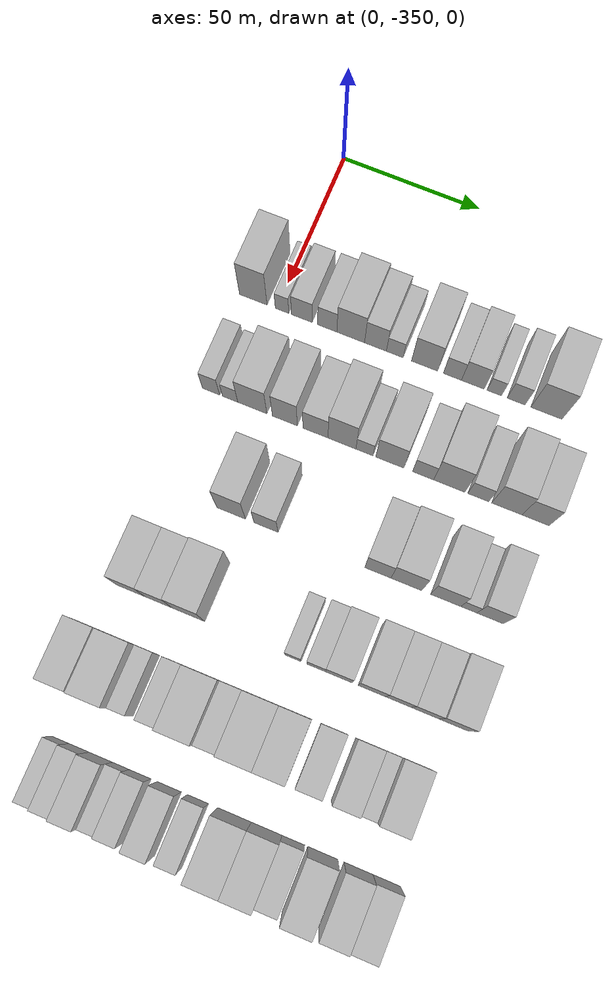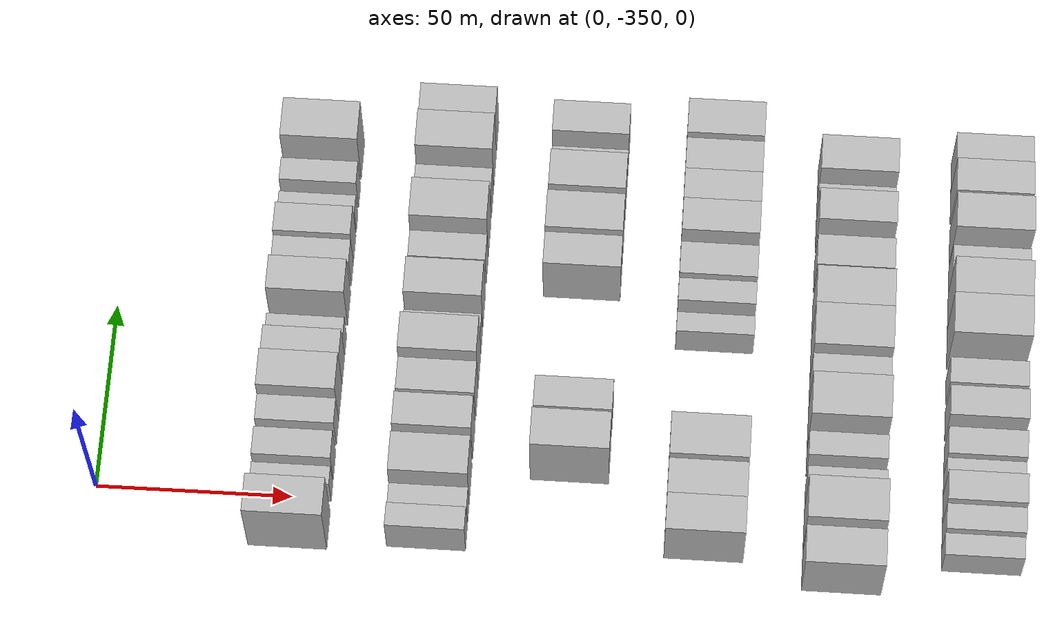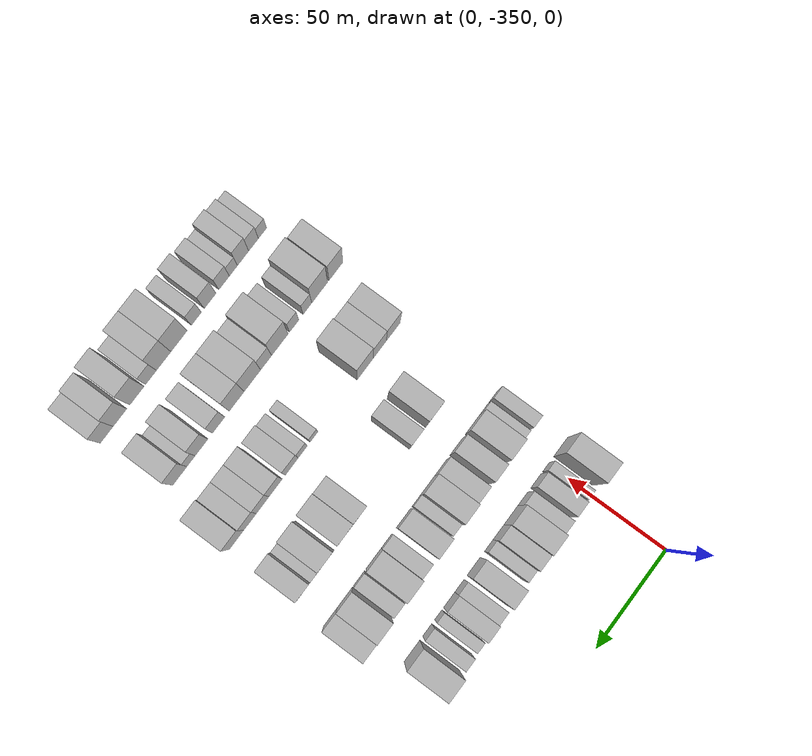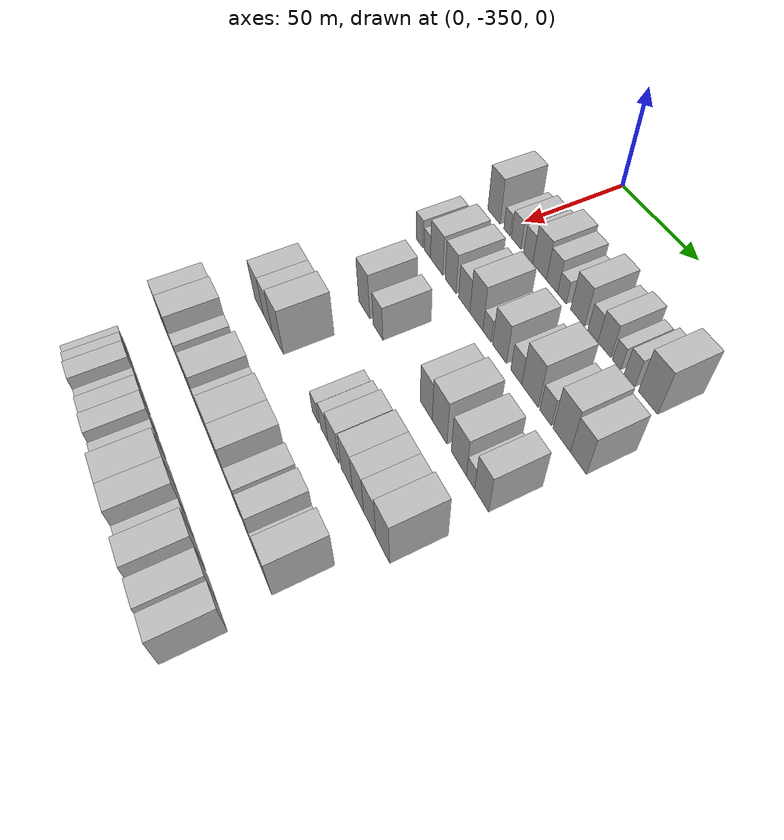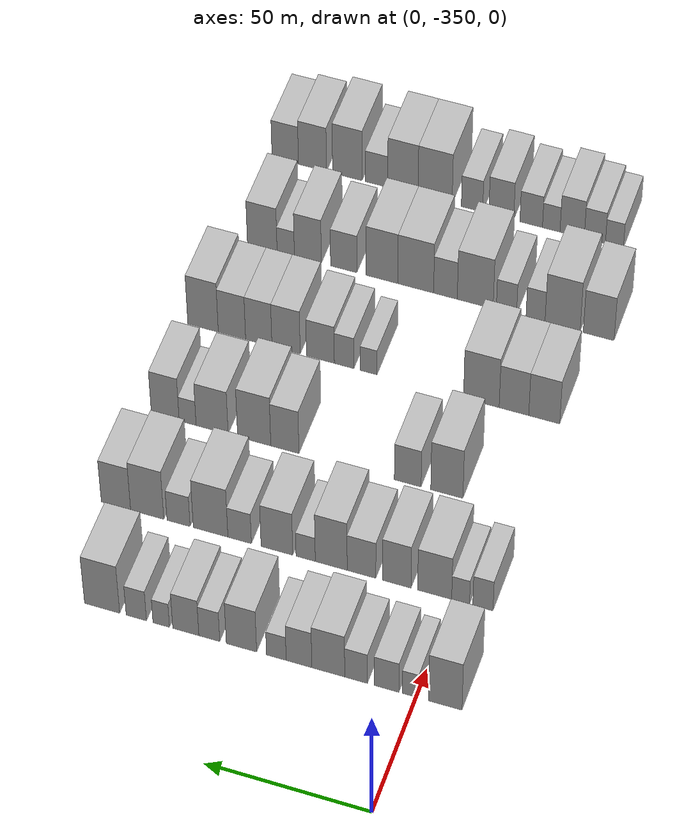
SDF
<sdf version="1.6">
 <world name="default">
  <model name="building_26">
   <static>1</static>
   <pose>50.0000 -358.6228 0 0.000000 0.000000 0.000000</pose>
   <link name="link">
    <pose>0 0 12.00 0 0 0</pose>
    <collision name="collision"><geometry><box><size>20.0000 10.0231 24.0000</size></box></geometry></collision>
    <visual name="visual">
     <cast_shadows>0</cast_shadows>
     <geometry><box><size>20.0000 10.0231 24.0000</size></box></geometry>
     <material>
      <script>
       <uri>model://HANNAS_wall/materials/scripts</uri>
       <uri>model://HANNAS_wall/materials/textures</uri>
       <name>vrc/HANNAS_wall</name>
      </script>
     </material>
    </visual>
   </link>
  </model>
  <model name="building_27">
   <static>1</static>
   <pose>50.0000 -348.1740 0 0.000000 0.000000 0.000000</pose>
   <link name="link">
    <pose>0 0 6.00 0 0 0</pose>
    <collision name="collision"><geometry><box><size>20.0000 4.8745 12.0000</size></box></geometry></collision>
    <visual name="visual">
     <cast_shadows>0</cast_shadows>
     <geometry><box><size>20.0000 4.8745 12.0000</size></box></geometry>
     <material>
      <script>
       <uri>model://HANNAS_wall/materials/scripts</uri>
       <uri>model://HANNAS_wall/materials/textures</uri>
       <name>vrc/HANNAS_wall</name>
      </script>
     </material>
    </visual>
   </link>
  </model>
  <model name="building_28">
   <static>1</static>
   <pose>50.0000 -341.0008 0 0.000000 0.000000 0.000000</pose>
   <link name="link">
    <pose>0 0 7.50 0 0 0</pose>
    <collision name="collision"><geometry><box><size>20.0000 7.4718 15.0000</size></box></geometry></collision>
    <visual name="visual">
     <cast_shadows>0</cast_shadows>
     <geometry><box><size>20.0000 7.4718 15.0000</size></box></geometry>
     <material>
      <script>
       <uri>model://HANNAS_wall/materials/scripts</uri>
       <uri>model://HANNAS_wall/materials/textures</uri>
       <name>vrc/HANNAS_wall</name>
      </script>
     </material>
    </visual>
   </link>
  </model>
  <model name="building_29">
   <static>1</static>
   <pose>50.0000 -331.8281 0 0.000000 0.000000 0.000000</pose>
   <link name="link">
    <pose>0 0 7.50 0 0 0</pose>
    <collision name="collision"><geometry><box><size>20.0000 6.8737 15.0000</size></box></geometry></collision>
    <visual name="visual">
     <cast_shadows>0</cast_shadows>
     <geometry><box><size>20.0000 6.8737 15.0000</size></box></geometry>
     <material>
      <script>
       <uri>model://HANNAS_wall/materials/scripts</uri>
       <uri>model://HANNAS_wall/materials/textures</uri>
       <name>vrc/HANNAS_wall</name>
      </script>
     </material>
    </visual>
   </link>
  </model>
  <model name="building_30">
   <static>1</static>
   <pose>50.0000 -323.4104 0 0.000000 0.000000 0.000000</pose>
   <link name="link">
    <pose>0 0 10.50 0 0 0</pose>
    <collision name="collision"><geometry><box><size>20.0000 9.9616 21.0000</size></box></geometry></collision>
    <visual name="visual">
     <cast_shadows>0</cast_shadows>
     <geometry><box><size>20.0000 9.9616 21.0000</size></box></geometry>
     <material>
      <script>
       <uri>model://HANNAS_wall/materials/scripts</uri>
       <uri>model://HANNAS_wall/materials/textures</uri>
       <name>vrc/HANNAS_wall</name>
      </script>
     </material>
    </visual>
   </link>
  </model>
  <model name="building_31">
   <static>1</static>
   <pose>50.0000 -314.5346 0 0.000000 0.000000 0.000000</pose>
   <link name="link">
    <pose>0 0 9.00 0 0 0</pose>
    <collision name="collision"><geometry><box><size>20.0000 7.7899 18.0000</size></box></geometry></collision>
    <visual name="visual">
     <cast_shadows>0</cast_shadows>
     <geometry><box><size>20.0000 7.7899 18.0000</size></box></geometry>
     <material>
      <script>
       <uri>model://HANNAS_wall/materials/scripts</uri>
       <uri>model://HANNAS_wall/materials/textures</uri>
       <name>vrc/HANNAS_wall</name>
      </script>
     </material>
    </visual>
   </link>
  </model>
  <model name="building_32">
   <static>1</static>
   <pose>50.0000 -307.6552 0 0.000000 0.000000 0.000000</pose>
   <link name="link">
    <pose>0 0 6.00 0 0 0</pose>
    <collision name="collision"><geometry><box><size>20.0000 5.9690 12.0000</size></box></geometry></collision>
    <visual name="visual">
     <cast_shadows>0</cast_shadows>
     <geometry><box><size>20.0000 5.9690 12.0000</size></box></geometry>
     <material>
      <script>
       <uri>model://HANNAS_wall/materials/scripts</uri>
       <uri>model://HANNAS_wall/materials/textures</uri>
       <name>vrc/HANNAS_wall</name>
      </script>
     </material>
    </visual>
   </link>
  </model>
  <model name="building_33">
   <static>1</static>
   <pose>50.0000 -297.0364 0 0.000000 0.000000 0.000000</pose>
   <link name="link">
    <pose>0 0 10.50 0 0 0</pose>
    <collision name="collision"><geometry><box><size>20.0000 9.2685 21.0000</size></box></geometry></collision>
    <visual name="visual">
     <cast_shadows>0</cast_shadows>
     <geometry><box><size>20.0000 9.2685 21.0000</size></box></geometry>
     <material>
      <script>
       <uri>model://HANNAS_wall/materials/scripts</uri>
       <uri>model://HANNAS_wall/materials/textures</uri>
       <name>vrc/HANNAS_wall</name>
      </script>
     </material>
    </visual>
   </link>
  </model>
  <model name="building_34">
   <static>1</static>
   <pose>50.0000 -287.2047 0 0.000000 0.000000 0.000000</pose>
   <link name="link">
    <pose>0 0 7.50 0 0 0</pose>
    <collision name="collision"><geometry><box><size>20.0000 6.3949 15.0000</size></box></geometry></collision>
    <visual name="visual">
     <cast_shadows>0</cast_shadows>
     <geometry><box><size>20.0000 6.3949 15.0000</size></box></geometry>
     <material>
      <script>
       <uri>model://HANNAS_wall/materials/scripts</uri>
       <uri>model://HANNAS_wall/materials/textures</uri>
       <name>vrc/HANNAS_wall</name>
      </script>
     </material>
    </visual>
   </link>
  </model>
  <model name="building_35">
   <static>1</static>
   <pose>50.0000 -280.0026 0 0.000000 0.000000 0.000000</pose>
   <link name="link">
    <pose>0 0 9.00 0 0 0</pose>
    <collision name="collision"><geometry><box><size>20.0000 8.0094 18.0000</size></box></geometry></collision>
    <visual name="visual">
     <cast_shadows>0</cast_shadows>
     <geometry><box><size>20.0000 8.0094 18.0000</size></box></geometry>
     <material>
      <script>
       <uri>model://HANNAS_wall/materials/scripts</uri>
       <uri>model://HANNAS_wall/materials/textures</uri>
       <name>vrc/HANNAS_wall</name>
      </script>
     </material>
    </visual>
   </link>
  </model>
  <model name="building_36">
   <static>1</static>
   <pose>50.0000 -272.4580 0 0.000000 0.000000 0.000000</pose>
   <link name="link">
    <pose>0 0 6.00 0 0 0</pose>
    <collision name="collision"><geometry><box><size>20.0000 5.0798 12.0000</size></box></geometry></collision>
    <visual name="visual">
     <cast_shadows>0</cast_shadows>
     <geometry><box><size>20.0000 5.0798 12.0000</size></box></geometry>
     <material>
      <script>
       <uri>model://HANNAS_wall/materials/scripts</uri>
       <uri>model://HANNAS_wall/materials/textures</uri>
       <name>vrc/HANNAS_wall</name>
      </script>
     </material>
    </visual>
   </link>
  </model>
  <model name="building_37">
   <static>1</static>
   <pose>50.0000 -264.7876 0 0.000000 0.000000 0.000000</pose>
   <link name="link">
    <pose>0 0 7.50 0 0 0</pose>
    <collision name="collision"><geometry><box><size>20.0000 6.2608 15.0000</size></box></geometry></collision>
    <visual name="visual">
     <cast_shadows>0</cast_shadows>
     <geometry><box><size>20.0000 6.2608 15.0000</size></box></geometry>
     <material>
      <script>
       <uri>model://HANNAS_wall/materials/scripts</uri>
       <uri>model://HANNAS_wall/materials/textures</uri>
       <name>vrc/HANNAS_wall</name>
      </script>
     </material>
    </visual>
   </link>
  </model>
  <model name="building_38">
   <static>1</static>
   <pose>50.0000 -254.2339 0 0.000000 0.000000 0.000000</pose>
   <link name="link">
    <pose>0 0 12.00 0 0 0</pose>
    <collision name="collision"><geometry><box><size>20.0000 10.8467 24.0000</size></box></geometry></collision>
    <visual name="visual">
     <cast_shadows>0</cast_shadows>
     <geometry><box><size>20.0000 10.8467 24.0000</size></box></geometry>
     <material>
      <script>
       <uri>model://HANNAS_wall/materials/scripts</uri>
       <uri>model://HANNAS_wall/materials/textures</uri>
       <name>vrc/HANNAS_wall</name>
      </script>
     </material>
    </visual>
   </link>
  </model>
  <model name="building_160">
   <static>1</static>
   <pose>85.0000 -358.7815 0 0.000000 0.000000 0.000000</pose>
   <link name="link">
    <pose>0 0 7.50 0 0 0</pose>
    <collision name="collision"><geometry><box><size>20.0000 6.1439 15.0000</size></box></geometry></collision>
    <visual name="visual">
     <cast_shadows>0</cast_shadows>
     <geometry><box><size>20.0000 6.1439 15.0000</size></box></geometry>
     <material>
      <script>
       <uri>model://HANNAS_wall/materials/scripts</uri>
       <uri>model://HANNAS_wall/materials/textures</uri>
       <name>vrc/HANNAS_wall</name>
      </script>
     </material>
    </visual>
   </link>
  </model>
  <model name="building_161">
   <static>1</static>
   <pose>85.0000 -351.9942 0 0.000000 0.000000 0.000000</pose>
   <link name="link">
    <pose>0 0 6.00 0 0 0</pose>
    <collision name="collision"><geometry><box><size>20.0000 5.4308 12.0000</size></box></geometry></collision>
    <visual name="visual">
     <cast_shadows>0</cast_shadows>
     <geometry><box><size>20.0000 5.4308 12.0000</size></box></geometry>
     <material>
      <script>
       <uri>model://HANNAS_wall/materials/scripts</uri>
       <uri>model://HANNAS_wall/materials/textures</uri>
       <name>vrc/HANNAS_wall</name>
      </script>
     </material>
    </visual>
   </link>
  </model>
  <model name="building_162">
   <static>1</static>
   <pose>85.0000 -344.0885 0 0.000000 0.000000 0.000000</pose>
   <link name="link">
    <pose>0 0 10.50 0 0 0</pose>
    <collision name="collision"><geometry><box><size>20.0000 10.3806 21.0000</size></box></geometry></collision>
    <visual name="visual">
     <cast_shadows>0</cast_shadows>
     <geometry><box><size>20.0000 10.3806 21.0000</size></box></geometry>
     <material>
      <script>
       <uri>model://HANNAS_wall/materials/scripts</uri>
       <uri>model://HANNAS_wall/materials/textures</uri>
       <name>vrc/HANNAS_wall</name>
      </script>
     </material>
    </visual>
   </link>
  </model>
  <model name="building_163">
   <static>1</static>
   <pose>85.0000 -332.4969 0 0.000000 0.000000 0.000000</pose>
   <link name="link">
    <pose>0 0 10.50 0 0 0</pose>
    <collision name="collision"><geometry><box><size>20.0000 8.8026 21.0000</size></box></geometry></collision>
    <visual name="visual">
     <cast_shadows>0</cast_shadows>
     <geometry><box><size>20.0000 8.8026 21.0000</size></box></geometry>
     <material>
      <script>
       <uri>model://HANNAS_wall/materials/scripts</uri>
       <uri>model://HANNAS_wall/materials/textures</uri>
       <name>vrc/HANNAS_wall</name>
      </script>
     </material>
    </visual>
   </link>
  </model>
  <model name="building_164">
   <static>1</static>
   <pose>85.0000 -321.6985 0 0.000000 0.000000 0.000000</pose>
   <link name="link">
    <pose>0 0 9.00 0 0 0</pose>
    <collision name="collision"><geometry><box><size>20.0000 8.7943 18.0000</size></box></geometry></collision>
    <visual name="visual">
     <cast_shadows>0</cast_shadows>
     <geometry><box><size>20.0000 8.7943 18.0000</size></box></geometry>
     <material>
      <script>
       <uri>model://HANNAS_wall/materials/scripts</uri>
       <uri>model://HANNAS_wall/materials/textures</uri>
       <name>vrc/HANNAS_wall</name>
      </script>
     </material>
    </visual>
   </link>
  </model>
  <model name="building_165">
   <static>1</static>
   <pose>85.0000 -312.3862 0 0.000000 0.000000 0.000000</pose>
   <link name="link">
    <pose>0 0 12.00 0 0 0</pose>
    <collision name="collision"><geometry><box><size>20.0000 9.8302 24.0000</size></box></geometry></collision>
    <visual name="visual">
     <cast_shadows>0</cast_shadows>
     <geometry><box><size>20.0000 9.8302 24.0000</size></box></geometry>
     <material>
      <script>
       <uri>model://HANNAS_wall/materials/scripts</uri>
       <uri>model://HANNAS_wall/materials/textures</uri>
       <name>vrc/HANNAS_wall</name>
      </script>
     </material>
    </visual>
   </link>
  </model>
  <model name="building_166">
   <static>1</static>
   <pose>85.0000 -304.4908 0 0.000000 0.000000 0.000000</pose>
   <link name="link">
    <pose>0 0 6.00 0 0 0</pose>
    <collision name="collision"><geometry><box><size>20.0000 5.9608 12.0000</size></box></geometry></collision>
    <visual name="visual">
     <cast_shadows>0</cast_shadows>
     <geometry><box><size>20.0000 5.9608 12.0000</size></box></geometry>
     <material>
      <script>
       <uri>model://HANNAS_wall/materials/scripts</uri>
       <uri>model://HANNAS_wall/materials/textures</uri>
       <name>vrc/HANNAS_wall</name>
      </script>
     </material>
    </visual>
   </link>
  </model>
  <model name="building_167">
   <static>1</static>
   <pose>85.0000 -295.6017 0 0.000000 0.000000 0.000000</pose>
   <link name="link">
    <pose>0 0 10.50 0 0 0</pose>
    <collision name="collision"><geometry><box><size>20.0000 9.8174 21.0000</size></box></geometry></collision>
    <visual name="visual">
     <cast_shadows>0</cast_shadows>
     <geometry><box><size>20.0000 9.8174 21.0000</size></box></geometry>
     <material>
      <script>
       <uri>model://HANNAS_wall/materials/scripts</uri>
       <uri>model://HANNAS_wall/materials/textures</uri>
       <name>vrc/HANNAS_wall</name>
      </script>
     </material>
    </visual>
   </link>
  </model>
  <model name="building_168">
   <static>1</static>
   <pose>85.0000 -284.0375 0 0.000000 0.000000 0.000000</pose>
   <link name="link">
    <pose>0 0 7.50 0 0 0</pose>
    <collision name="collision"><geometry><box><size>20.0000 7.3109 15.0000</size></box></geometry></collision>
    <visual name="visual">
     <cast_shadows>0</cast_shadows>
     <geometry><box><size>20.0000 7.3109 15.0000</size></box></geometry>
     <material>
      <script>
       <uri>model://HANNAS_wall/materials/scripts</uri>
       <uri>model://HANNAS_wall/materials/textures</uri>
       <name>vrc/HANNAS_wall</name>
      </script>
     </material>
    </visual>
   </link>
  </model>
  <model name="building_169">
   <static>1</static>
   <pose>85.0000 -274.9933 0 0.000000 0.000000 0.000000</pose>
   <link name="link">
    <pose>0 0 12.00 0 0 0</pose>
    <collision name="collision"><geometry><box><size>20.0000 10.7776 24.0000</size></box></geometry></collision>
    <visual name="visual">
     <cast_shadows>0</cast_shadows>
     <geometry><box><size>20.0000 10.7776 24.0000</size></box></geometry>
     <material>
      <script>
       <uri>model://HANNAS_wall/materials/scripts</uri>
       <uri>model://HANNAS_wall/materials/textures</uri>
       <name>vrc/HANNAS_wall</name>
      </script>
     </material>
    </visual>
   </link>
  </model>
  <model name="building_170">
   <static>1</static>
   <pose>85.0000 -264.9934 0 0.000000 0.000000 0.000000</pose>
   <link name="link">
    <pose>0 0 7.50 0 0 0</pose>
    <collision name="collision"><geometry><box><size>20.0000 7.2221 15.0000</size></box></geometry></collision>
    <visual name="visual">
     <cast_shadows>0</cast_shadows>
     <geometry><box><size>20.0000 7.2221 15.0000</size></box></geometry>
     <material>
      <script>
       <uri>model://HANNAS_wall/materials/scripts</uri>
       <uri>model://HANNAS_wall/materials/textures</uri>
       <name>vrc/HANNAS_wall</name>
      </script>
     </material>
    </visual>
   </link>
  </model>
  <model name="building_171">
   <static>1</static>
   <pose>85.0000 -255.1791 0 0.000000 0.000000 0.000000</pose>
   <link name="link">
    <pose>0 0 12.00 0 0 0</pose>
    <collision name="collision"><geometry><box><size>20.0000 10.4065 24.0000</size></box></geometry></collision>
    <visual name="visual">
     <cast_shadows>0</cast_shadows>
     <geometry><box><size>20.0000 10.4065 24.0000</size></box></geometry>
     <material>
      <script>
       <uri>model://HANNAS_wall/materials/scripts</uri>
       <uri>model://HANNAS_wall/materials/textures</uri>
       <name>vrc/HANNAS_wall</name>
      </script>
     </material>
    </visual>
   </link>
  </model>
  <model name="building_172">
   <static>1</static>
   <pose>85.0000 -245.3760 0 0.000000 0.000000 0.000000</pose>
   <link name="link">
    <pose>0 0 10.50 0 0 0</pose>
    <collision name="collision"><geometry><box><size>20.0000 9.1997 21.0000</size></box></geometry></collision>
    <visual name="visual">
     <cast_shadows>0</cast_shadows>
     <geometry><box><size>20.0000 9.1997 21.0000</size></box></geometry>
     <material>
      <script>
       <uri>model://HANNAS_wall/materials/scripts</uri>
       <uri>model://HANNAS_wall/materials/textures</uri>
       <name>vrc/HANNAS_wall</name>
      </script>
     </material>
    </visual>
   </link>
  </model>
  <model name="building_278">
   <static>1</static>
   <pose>120.0000 -336.5082 0 0.000000 0.000000 0.000000</pose>
   <link name="link">
    <pose>0 0 12.00 0 0 0</pose>
    <collision name="collision"><geometry><box><size>20.0000 9.9854 24.0000</size></box></geometry></collision>
    <visual name="visual">
     <cast_shadows>0</cast_shadows>
     <geometry><box><size>20.0000 9.9854 24.0000</size></box></geometry>
     <material>
      <script>
       <uri>model://HANNAS_wall/materials/scripts</uri>
       <uri>model://HANNAS_wall/materials/textures</uri>
       <name>vrc/HANNAS_wall</name>
      </script>
     </material>
    </visual>
   </link>
  </model>
  <model name="building_279">
   <static>1</static>
   <pose>120.0000 -324.3525 0 0.000000 0.000000 0.000000</pose>
   <link name="link">
    <pose>0 0 9.00 0 0 0</pose>
    <collision name="collision"><geometry><box><size>20.0000 8.3260 18.0000</size></box></geometry></collision>
    <visual name="visual">
     <cast_shadows>0</cast_shadows>
     <geometry><box><size>20.0000 8.3260 18.0000</size></box></geometry>
     <material>
      <script>
       <uri>model://HANNAS_wall/materials/scripts</uri>
       <uri>model://HANNAS_wall/materials/textures</uri>
       <name>vrc/HANNAS_wall</name>
      </script>
     </material>
    </visual>
   </link>
  </model>
  <model name="building_280">
   <static>1</static>
   <pose>120.0000 -285.8775 0 0.000000 0.000000 0.000000</pose>
   <link name="link">
    <pose>0 0 10.50 0 0 0</pose>
    <collision name="collision"><geometry><box><size>20.0000 8.8746 21.0000</size></box></geometry></collision>
    <visual name="visual">
     <cast_shadows>0</cast_shadows>
     <geometry><box><size>20.0000 8.8746 21.0000</size></box></geometry>
     <material>
      <script>
       <uri>model://HANNAS_wall/materials/scripts</uri>
       <uri>model://HANNAS_wall/materials/textures</uri>
       <name>vrc/HANNAS_wall</name>
      </script>
     </material>
    </visual>
   </link>
  </model>
  <model name="building_281">
   <static>1</static>
   <pose>120.0000 -276.2010 0 0.000000 0.000000 0.000000</pose>
   <link name="link">
    <pose>0 0 12.00 0 0 0</pose>
    <collision name="collision"><geometry><box><size>20.0000 10.4784 24.0000</size></box></geometry></collision>
    <visual name="visual">
     <cast_shadows>0</cast_shadows>
     <geometry><box><size>20.0000 10.4784 24.0000</size></box></geometry>
     <material>
      <script>
       <uri>model://HANNAS_wall/materials/scripts</uri>
       <uri>model://HANNAS_wall/materials/textures</uri>
       <name>vrc/HANNAS_wall</name>
      </script>
     </material>
    </visual>
   </link>
  </model>
  <model name="building_282">
   <static>1</static>
   <pose>120.0000 -262.8775 0 0.000000 0.000000 0.000000</pose>
   <link name="link">
    <pose>0 0 10.50 0 0 0</pose>
    <collision name="collision"><geometry><box><size>20.0000 10.1687 21.0000</size></box></geometry></collision>
    <visual name="visual">
     <cast_shadows>0</cast_shadows>
     <geometry><box><size>20.0000 10.1687 21.0000</size></box></geometry>
     <material>
      <script>
       <uri>model://HANNAS_wall/materials/scripts</uri>
       <uri>model://HANNAS_wall/materials/textures</uri>
       <name>vrc/HANNAS_wall</name>
      </script>
     </material>
    </visual>
   </link>
  </model>
  <model name="building_283">
   <static>1</static>
   <pose>120.0000 -255.1028 0 0.000000 0.000000 0.000000</pose>
   <link name="link">
    <pose>0 0 6.00 0 0 0</pose>
    <collision name="collision"><geometry><box><size>20.0000 5.3806 12.0000</size></box></geometry></collision>
    <visual name="visual">
     <cast_shadows>0</cast_shadows>
     <geometry><box><size>20.0000 5.3806 12.0000</size></box></geometry>
     <material>
      <script>
       <uri>model://HANNAS_wall/materials/scripts</uri>
       <uri>model://HANNAS_wall/materials/textures</uri>
       <name>vrc/HANNAS_wall</name>
      </script>
     </material>
    </visual>
   </link>
  </model>
  <model name="building_284">
   <static>1</static>
   <pose>120.0000 -247.9826 0 0.000000 0.000000 0.000000</pose>
   <link name="link">
    <pose>0 0 10.50 0 0 0</pose>
    <collision name="collision"><geometry><box><size>20.0000 8.8597 21.0000</size></box></geometry></collision>
    <visual name="visual">
     <cast_shadows>0</cast_shadows>
     <geometry><box><size>20.0000 8.8597 21.0000</size></box></geometry>
     <material>
      <script>
       <uri>model://HANNAS_wall/materials/scripts</uri>
       <uri>model://HANNAS_wall/materials/textures</uri>
       <name>vrc/HANNAS_wall</name>
      </script>
     </material>
    </visual>
   </link>
  </model>
  <model name="building_393">
   <static>1</static>
   <pose>155.0000 -355.8081 0 0.000000 0.000000 0.000000</pose>
   <link name="link">
    <pose>0 0 10.50 0 0 0</pose>
    <collision name="collision"><geometry><box><size>20.0000 9.7034 21.0000</size></box></geometry></collision>
    <visual name="visual">
     <cast_shadows>0</cast_shadows>
     <geometry><box><size>20.0000 9.7034 21.0000</size></box></geometry>
     <material>
      <script>
       <uri>model://HANNAS_wall/materials/scripts</uri>
       <uri>model://HANNAS_wall/materials/textures</uri>
       <name>vrc/HANNAS_wall</name>
      </script>
     </material>
    </visual>
   </link>
  </model>
  <model name="building_394">
   <static>1</static>
   <pose>155.0000 -346.3168 0 0.000000 0.000000 0.000000</pose>
   <link name="link">
    <pose>0 0 10.50 0 0 0</pose>
    <collision name="collision"><geometry><box><size>20.0000 9.2791 21.0000</size></box></geometry></collision>
    <visual name="visual">
     <cast_shadows>0</cast_shadows>
     <geometry><box><size>20.0000 9.2791 21.0000</size></box></geometry>
     <material>
      <script>
       <uri>model://HANNAS_wall/materials/scripts</uri>
       <uri>model://HANNAS_wall/materials/textures</uri>
       <name>vrc/HANNAS_wall</name>
      </script>
     </material>
    </visual>
   </link>
  </model>
  <model name="building_395">
   <static>1</static>
   <pose>155.0000 -336.0774 0 0.000000 0.000000 0.000000</pose>
   <link name="link">
    <pose>0 0 12.00 0 0 0</pose>
    <collision name="collision"><geometry><box><size>20.0000 11.1998 24.0000</size></box></geometry></collision>
    <visual name="visual">
     <cast_shadows>0</cast_shadows>
     <geometry><box><size>20.0000 11.1998 24.0000</size></box></geometry>
     <material>
      <script>
       <uri>model://HANNAS_wall/materials/scripts</uri>
       <uri>model://HANNAS_wall/materials/textures</uri>
       <name>vrc/HANNAS_wall</name>
      </script>
     </material>
    </visual>
   </link>
  </model>
  <model name="building_396">
   <static>1</static>
   <pose>155.0000 -300.4393 0 0.000000 0.000000 0.000000</pose>
   <link name="link">
    <pose>0 0 6.00 0 0 0</pose>
    <collision name="collision"><geometry><box><size>20.0000 5.3587 12.0000</size></box></geometry></collision>
    <visual name="visual">
     <cast_shadows>0</cast_shadows>
     <geometry><box><size>20.0000 5.3587 12.0000</size></box></geometry>
     <material>
      <script>
       <uri>model://HANNAS_wall/materials/scripts</uri>
       <uri>model://HANNAS_wall/materials/textures</uri>
       <name>vrc/HANNAS_wall</name>
      </script>
     </material>
    </visual>
   </link>
  </model>
  <model name="building_397">
   <static>1</static>
   <pose>155.0000 -292.6345 0 0.000000 0.000000 0.000000</pose>
   <link name="link">
    <pose>0 0 7.50 0 0 0</pose>
    <collision name="collision"><geometry><box><size>20.0000 6.2510 15.0000</size></box></geometry></collision>
    <visual name="visual">
     <cast_shadows>0</cast_shadows>
     <geometry><box><size>20.0000 6.2510 15.0000</size></box></geometry>
     <material>
      <script>
       <uri>model://HANNAS_wall/materials/scripts</uri>
       <uri>model://HANNAS_wall/materials/textures</uri>
       <name>vrc/HANNAS_wall</name>
      </script>
     </material>
    </visual>
   </link>
  </model>
  <model name="building_398">
   <static>1</static>
   <pose>155.0000 -285.0578 0 0.000000 0.000000 0.000000</pose>
   <link name="link">
    <pose>0 0 9.00 0 0 0</pose>
    <collision name="collision"><geometry><box><size>20.0000 8.9024 18.0000</size></box></geometry></collision>
    <visual name="visual">
     <cast_shadows>0</cast_shadows>
     <geometry><box><size>20.0000 8.9024 18.0000</size></box></geometry>
     <material>
      <script>
       <uri>model://HANNAS_wall/materials/scripts</uri>
       <uri>model://HANNAS_wall/materials/textures</uri>
       <name>vrc/HANNAS_wall</name>
      </script>
     </material>
    </visual>
   </link>
  </model>
  <model name="building_399">
   <static>1</static>
   <pose>155.0000 -274.0758 0 0.000000 0.000000 0.000000</pose>
   <link name="link">
    <pose>0 0 10.50 0 0 0</pose>
    <collision name="collision"><geometry><box><size>20.0000 9.0616 21.0000</size></box></geometry></collision>
    <visual name="visual">
     <cast_shadows>0</cast_shadows>
     <geometry><box><size>20.0000 9.0616 21.0000</size></box></geometry>
     <material>
      <script>
       <uri>model://HANNAS_wall/materials/scripts</uri>
       <uri>model://HANNAS_wall/materials/textures</uri>
       <name>vrc/HANNAS_wall</name>
      </script>
     </material>
    </visual>
   </link>
  </model>
  <model name="building_400">
   <static>1</static>
   <pose>155.0000 -265.3163 0 0.000000 0.000000 0.000000</pose>
   <link name="link">
    <pose>0 0 10.50 0 0 0</pose>
    <collision name="collision"><geometry><box><size>20.0000 8.4575 21.0000</size></box></geometry></collision>
    <visual name="visual">
     <cast_shadows>0</cast_shadows>
     <geometry><box><size>20.0000 8.4575 21.0000</size></box></geometry>
     <material>
      <script>
       <uri>model://HANNAS_wall/materials/scripts</uri>
       <uri>model://HANNAS_wall/materials/textures</uri>
       <name>vrc/HANNAS_wall</name>
      </script>
     </material>
    </visual>
   </link>
  </model>
  <model name="building_401">
   <static>1</static>
   <pose>155.0000 -256.6833 0 0.000000 0.000000 0.000000</pose>
   <link name="link">
    <pose>0 0 10.50 0 0 0</pose>
    <collision name="collision"><geometry><box><size>20.0000 8.8085 21.0000</size></box></geometry></collision>
    <visual name="visual">
     <cast_shadows>0</cast_shadows>
     <geometry><box><size>20.0000 8.8085 21.0000</size></box></geometry>
     <material>
      <script>
       <uri>model://HANNAS_wall/materials/scripts</uri>
       <uri>model://HANNAS_wall/materials/textures</uri>
       <name>vrc/HANNAS_wall</name>
      </script>
     </material>
    </visual>
   </link>
  </model>
  <model name="building_402">
   <static>1</static>
   <pose>155.0000 -247.3656 0 0.000000 0.000000 0.000000</pose>
   <link name="link">
    <pose>0 0 12.00 0 0 0</pose>
    <collision name="collision"><geometry><box><size>20.0000 9.8269 24.0000</size></box></geometry></collision>
    <visual name="visual">
     <cast_shadows>0</cast_shadows>
     <geometry><box><size>20.0000 9.8269 24.0000</size></box></geometry>
     <material>
      <script>
       <uri>model://HANNAS_wall/materials/scripts</uri>
       <uri>model://HANNAS_wall/materials/textures</uri>
       <name>vrc/HANNAS_wall</name>
      </script>
     </material>
    </visual>
   </link>
  </model>
  <model name="building_513">
   <static>1</static>
   <pose>190.0000 -362.3161 0 0.000000 0.000000 0.000000</pose>
   <link name="link">
    <pose>0 0 10.50 0 0 0</pose>
    <collision name="collision"><geometry><box><size>20.0000 9.7552 21.0000</size></box></geometry></collision>
    <visual name="visual">
     <cast_shadows>0</cast_shadows>
     <geometry><box><size>20.0000 9.7552 21.0000</size></box></geometry>
     <material>
      <script>
       <uri>model://HANNAS_wall/materials/scripts</uri>
       <uri>model://HANNAS_wall/materials/textures</uri>
       <name>vrc/HANNAS_wall</name>
      </script>
     </material>
    </visual>
   </link>
  </model>
  <model name="building_514">
   <static>1</static>
   <pose>190.0000 -350.8643 0 0.000000 0.000000 0.000000</pose>
   <link name="link">
    <pose>0 0 12.00 0 0 0</pose>
    <collision name="collision"><geometry><box><size>20.0000 11.1485 24.0000</size></box></geometry></collision>
    <visual name="visual">
     <cast_shadows>0</cast_shadows>
     <geometry><box><size>20.0000 11.1485 24.0000</size></box></geometry>
     <material>
      <script>
       <uri>model://HANNAS_wall/materials/scripts</uri>
       <uri>model://HANNAS_wall/materials/textures</uri>
       <name>vrc/HANNAS_wall</name>
      </script>
     </material>
    </visual>
   </link>
  </model>
  <model name="building_515">
   <static>1</static>
   <pose>190.0000 -342.2623 0 0.000000 0.000000 0.000000</pose>
   <link name="link">
    <pose>0 0 7.50 0 0 0</pose>
    <collision name="collision"><geometry><box><size>20.0000 6.0555 15.0000</size></box></geometry></collision>
    <visual name="visual">
     <cast_shadows>0</cast_shadows>
     <geometry><box><size>20.0000 6.0555 15.0000</size></box></geometry>
     <material>
      <script>
       <uri>model://HANNAS_wall/materials/scripts</uri>
       <uri>model://HANNAS_wall/materials/textures</uri>
       <name>vrc/HANNAS_wall</name>
      </script>
     </material>
    </visual>
   </link>
  </model>
  <model name="building_516">
   <static>1</static>
   <pose>190.0000 -332.9907 0 0.000000 0.000000 0.000000</pose>
   <link name="link">
    <pose>0 0 7.50 0 0 0</pose>
    <collision name="collision"><geometry><box><size>20.0000 6.4878 15.0000</size></box></geometry></collision>
    <visual name="visual">
     <cast_shadows>0</cast_shadows>
     <geometry><box><size>20.0000 6.4878 15.0000</size></box></geometry>
     <material>
      <script>
       <uri>model://HANNAS_wall/materials/scripts</uri>
       <uri>model://HANNAS_wall/materials/textures</uri>
       <name>vrc/HANNAS_wall</name>
      </script>
     </material>
    </visual>
   </link>
  </model>
  <model name="building_517">
   <static>1</static>
   <pose>190.0000 -323.0016 0 0.000000 0.000000 0.000000</pose>
   <link name="link">
    <pose>0 0 12.00 0 0 0</pose>
    <collision name="collision"><geometry><box><size>20.0000 11.4904 24.0000</size></box></geometry></collision>
    <visual name="visual">
     <cast_shadows>0</cast_shadows>
     <geometry><box><size>20.0000 11.4904 24.0000</size></box></geometry>
     <material>
      <script>
       <uri>model://HANNAS_wall/materials/scripts</uri>
       <uri>model://HANNAS_wall/materials/textures</uri>
       <name>vrc/HANNAS_wall</name>
      </script>
     </material>
    </visual>
   </link>
  </model>
  <model name="building_518">
   <static>1</static>
   <pose>190.0000 -313.4653 0 0.000000 0.000000 0.000000</pose>
   <link name="link">
    <pose>0 0 9.00 0 0 0</pose>
    <collision name="collision"><geometry><box><size>20.0000 7.5821 18.0000</size></box></geometry></collision>
    <visual name="visual">
     <cast_shadows>0</cast_shadows>
     <geometry><box><size>20.0000 7.5821 18.0000</size></box></geometry>
     <material>
      <script>
       <uri>model://HANNAS_wall/materials/scripts</uri>
       <uri>model://HANNAS_wall/materials/textures</uri>
       <name>vrc/HANNAS_wall</name>
      </script>
     </material>
    </visual>
   </link>
  </model>
  <model name="building_519">
   <static>1</static>
   <pose>190.0000 -303.9105 0 0.000000 0.000000 0.000000</pose>
   <link name="link">
    <pose>0 0 12.00 0 0 0</pose>
    <collision name="collision"><geometry><box><size>20.0000 11.5274 24.0000</size></box></geometry></collision>
    <visual name="visual">
     <cast_shadows>0</cast_shadows>
     <geometry><box><size>20.0000 11.5274 24.0000</size></box></geometry>
     <material>
      <script>
       <uri>model://HANNAS_wall/materials/scripts</uri>
       <uri>model://HANNAS_wall/materials/textures</uri>
       <name>vrc/HANNAS_wall</name>
      </script>
     </material>
    </visual>
   </link>
  </model>
  <model name="building_520">
   <static>1</static>
   <pose>190.0000 -293.0230 0 0.000000 0.000000 0.000000</pose>
   <link name="link">
    <pose>0 0 12.00 0 0 0</pose>
    <collision name="collision"><geometry><box><size>20.0000 10.2477 24.0000</size></box></geometry></collision>
    <visual name="visual">
     <cast_shadows>0</cast_shadows>
     <geometry><box><size>20.0000 10.2477 24.0000</size></box></geometry>
     <material>
      <script>
       <uri>model://HANNAS_wall/materials/scripts</uri>
       <uri>model://HANNAS_wall/materials/textures</uri>
       <name>vrc/HANNAS_wall</name>
      </script>
     </material>
    </visual>
   </link>
  </model>
  <model name="building_521">
   <static>1</static>
   <pose>190.0000 -280.6404 0 0.000000 0.000000 0.000000</pose>
   <link name="link">
    <pose>0 0 9.00 0 0 0</pose>
    <collision name="collision"><geometry><box><size>20.0000 8.5174 18.0000</size></box></geometry></collision>
    <visual name="visual">
     <cast_shadows>0</cast_shadows>
     <geometry><box><size>20.0000 8.5174 18.0000</size></box></geometry>
     <material>
      <script>
       <uri>model://HANNAS_wall/materials/scripts</uri>
       <uri>model://HANNAS_wall/materials/textures</uri>
       <name>vrc/HANNAS_wall</name>
      </script>
     </material>
    </visual>
   </link>
  </model>
  <model name="building_522">
   <static>1</static>
   <pose>190.0000 -268.9929 0 0.000000 0.000000 0.000000</pose>
   <link name="link">
    <pose>0 0 10.50 0 0 0</pose>
    <collision name="collision"><geometry><box><size>20.0000 8.7776 21.0000</size></box></geometry></collision>
    <visual name="visual">
     <cast_shadows>0</cast_shadows>
     <geometry><box><size>20.0000 8.7776 21.0000</size></box></geometry>
     <material>
      <script>
       <uri>model://HANNAS_wall/materials/scripts</uri>
       <uri>model://HANNAS_wall/materials/textures</uri>
       <name>vrc/HANNAS_wall</name>
      </script>
     </material>
    </visual>
   </link>
  </model>
  <model name="building_523">
   <static>1</static>
   <pose>190.0000 -261.7809 0 0.000000 0.000000 0.000000</pose>
   <link name="link">
    <pose>0 0 6.00 0 0 0</pose>
    <collision name="collision"><geometry><box><size>20.0000 5.6464 12.0000</size></box></geometry></collision>
    <visual name="visual">
     <cast_shadows>0</cast_shadows>
     <geometry><box><size>20.0000 5.6464 12.0000</size></box></geometry>
     <material>
      <script>
       <uri>model://HANNAS_wall/materials/scripts</uri>
       <uri>model://HANNAS_wall/materials/textures</uri>
       <name>vrc/HANNAS_wall</name>
      </script>
     </material>
    </visual>
   </link>
  </model>
  <model name="building_524">
   <static>1</static>
   <pose>190.0000 -254.1210 0 0.000000 0.000000 0.000000</pose>
   <link name="link">
    <pose>0 0 10.50 0 0 0</pose>
    <collision name="collision"><geometry><box><size>20.0000 9.6733 21.0000</size></box></geometry></collision>
    <visual name="visual">
     <cast_shadows>0</cast_shadows>
     <geometry><box><size>20.0000 9.6733 21.0000</size></box></geometry>
     <material>
      <script>
       <uri>model://HANNAS_wall/materials/scripts</uri>
       <uri>model://HANNAS_wall/materials/textures</uri>
       <name>vrc/HANNAS_wall</name>
      </script>
     </material>
    </visual>
   </link>
  </model>
  <model name="building_643">
   <static>1</static>
   <pose>225.0000 -356.9020 0 0.000000 0.000000 0.000000</pose>
   <link name="link">
    <pose>0 0 6.00 0 0 0</pose>
    <collision name="collision"><geometry><box><size>20.0000 5.7891 12.0000</size></box></geometry></collision>
    <visual name="visual">
     <cast_shadows>0</cast_shadows>
     <geometry><box><size>20.0000 5.7891 12.0000</size></box></geometry>
     <material>
      <script>
       <uri>model://HANNAS_wall/materials/scripts</uri>
       <uri>model://HANNAS_wall/materials/textures</uri>
       <name>vrc/HANNAS_wall</name>
      </script>
     </material>
    </visual>
   </link>
  </model>
  <model name="building_644">
   <static>1</static>
   <pose>225.0000 -350.6080 0 0.000000 0.000000 0.000000</pose>
   <link name="link">
    <pose>0 0 7.50 0 0 0</pose>
    <collision name="collision"><geometry><box><size>20.0000 6.7989 15.0000</size></box></geometry></collision>
    <visual name="visual">
     <cast_shadows>0</cast_shadows>
     <geometry><box><size>20.0000 6.7989 15.0000</size></box></geometry>
     <material>
      <script>
       <uri>model://HANNAS_wall/materials/scripts</uri>
       <uri>model://HANNAS_wall/materials/textures</uri>
       <name>vrc/HANNAS_wall</name>
      </script>
     </material>
    </visual>
   </link>
  </model>
  <model name="building_645">
   <static>1</static>
   <pose>225.0000 -343.2896 0 0.000000 0.000000 0.000000</pose>
   <link name="link">
    <pose>0 0 9.00 0 0 0</pose>
    <collision name="collision"><geometry><box><size>20.0000 7.8378 18.0000</size></box></geometry></collision>
    <visual name="visual">
     <cast_shadows>0</cast_shadows>
     <geometry><box><size>20.0000 7.8378 18.0000</size></box></geometry>
     <material>
      <script>
       <uri>model://HANNAS_wall/materials/scripts</uri>
       <uri>model://HANNAS_wall/materials/textures</uri>
       <name>vrc/HANNAS_wall</name>
      </script>
     </material>
    </visual>
   </link>
  </model>
  <model name="building_646">
   <static>1</static>
   <pose>225.0000 -336.5367 0 0.000000 0.000000 0.000000</pose>
   <link name="link">
    <pose>0 0 6.00 0 0 0</pose>
    <collision name="collision"><geometry><box><size>20.0000 5.6680 12.0000</size></box></geometry></collision>
    <visual name="visual">
     <cast_shadows>0</cast_shadows>
     <geometry><box><size>20.0000 5.6680 12.0000</size></box></geometry>
     <material>
      <script>
       <uri>model://HANNAS_wall/materials/scripts</uri>
       <uri>model://HANNAS_wall/materials/textures</uri>
       <name>vrc/HANNAS_wall</name>
      </script>
     </material>
    </visual>
   </link>
  </model>
  <model name="building_647">
   <static>1</static>
   <pose>225.0000 -330.0454 0 0.000000 0.000000 0.000000</pose>
   <link name="link">
    <pose>0 0 7.50 0 0 0</pose>
    <collision name="collision"><geometry><box><size>20.0000 7.3146 15.0000</size></box></geometry></collision>
    <visual name="visual">
     <cast_shadows>0</cast_shadows>
     <geometry><box><size>20.0000 7.3146 15.0000</size></box></geometry>
     <material>
      <script>
       <uri>model://HANNAS_wall/materials/scripts</uri>
       <uri>model://HANNAS_wall/materials/textures</uri>
       <name>vrc/HANNAS_wall</name>
      </script>
     </material>
    </visual>
   </link>
  </model>
  <model name="building_648">
   <static>1</static>
   <pose>225.0000 -320.3457 0 0.000000 0.000000 0.000000</pose>
   <link name="link">
    <pose>0 0 9.00 0 0 0</pose>
    <collision name="collision"><geometry><box><size>20.0000 8.0847 18.0000</size></box></geometry></collision>
    <visual name="visual">
     <cast_shadows>0</cast_shadows>
     <geometry><box><size>20.0000 8.0847 18.0000</size></box></geometry>
     <material>
      <script>
       <uri>model://HANNAS_wall/materials/scripts</uri>
       <uri>model://HANNAS_wall/materials/textures</uri>
       <name>vrc/HANNAS_wall</name>
      </script>
     </material>
    </visual>
   </link>
  </model>
  <model name="building_649">
   <static>1</static>
   <pose>225.0000 -310.8253 0 0.000000 0.000000 0.000000</pose>
   <link name="link">
    <pose>0 0 7.50 0 0 0</pose>
    <collision name="collision"><geometry><box><size>20.0000 6.9562 15.0000</size></box></geometry></collision>
    <visual name="visual">
     <cast_shadows>0</cast_shadows>
     <geometry><box><size>20.0000 6.9562 15.0000</size></box></geometry>
     <material>
      <script>
       <uri>model://HANNAS_wall/materials/scripts</uri>
       <uri>model://HANNAS_wall/materials/textures</uri>
       <name>vrc/HANNAS_wall</name>
      </script>
     </material>
    </visual>
   </link>
  </model>
  <model name="building_650">
   <static>1</static>
   <pose>225.0000 -298.7779 0 0.000000 0.000000 0.000000</pose>
   <link name="link">
    <pose>0 0 12.00 0 0 0</pose>
    <collision name="collision"><geometry><box><size>20.0000 11.1386 24.0000</size></box></geometry></collision>
    <visual name="visual">
     <cast_shadows>0</cast_shadows>
     <geometry><box><size>20.0000 11.1386 24.0000</size></box></geometry>
     <material>
      <script>
       <uri>model://HANNAS_wall/materials/scripts</uri>
       <uri>model://HANNAS_wall/materials/textures</uri>
       <name>vrc/HANNAS_wall</name>
      </script>
     </material>
    </visual>
   </link>
  </model>
  <model name="building_651">
   <static>1</static>
   <pose>225.0000 -288.2452 0 0.000000 0.000000 0.000000</pose>
   <link name="link">
    <pose>0 0 12.00 0 0 0</pose>
    <collision name="collision"><geometry><box><size>20.0000 9.9268 24.0000</size></box></geometry></collision>
    <visual name="visual">
     <cast_shadows>0</cast_shadows>
     <geometry><box><size>20.0000 9.9268 24.0000</size></box></geometry>
     <material>
      <script>
       <uri>model://HANNAS_wall/materials/scripts</uri>
       <uri>model://HANNAS_wall/materials/textures</uri>
       <name>vrc/HANNAS_wall</name>
      </script>
     </material>
    </visual>
   </link>
  </model>
  <model name="building_652">
   <static>1</static>
   <pose>225.0000 -279.5685 0 0.000000 0.000000 0.000000</pose>
   <link name="link">
    <pose>0 0 7.50 0 0 0</pose>
    <collision name="collision"><geometry><box><size>20.0000 7.4266 15.0000</size></box></geometry></collision>
    <visual name="visual">
     <cast_shadows>0</cast_shadows>
     <geometry><box><size>20.0000 7.4266 15.0000</size></box></geometry>
     <material>
      <script>
       <uri>model://HANNAS_wall/materials/scripts</uri>
       <uri>model://HANNAS_wall/materials/textures</uri>
       <name>vrc/HANNAS_wall</name>
      </script>
     </material>
    </visual>
   </link>
  </model>
  <model name="building_653">
   <static>1</static>
   <pose>225.0000 -269.9817 0 0.000000 0.000000 0.000000</pose>
   <link name="link">
    <pose>0 0 12.00 0 0 0</pose>
    <collision name="collision"><geometry><box><size>20.0000 9.7470 24.0000</size></box></geometry></collision>
    <visual name="visual">
     <cast_shadows>0</cast_shadows>
     <geometry><box><size>20.0000 9.7470 24.0000</size></box></geometry>
     <material>
      <script>
       <uri>model://HANNAS_wall/materials/scripts</uri>
       <uri>model://HANNAS_wall/materials/textures</uri>
       <name>vrc/HANNAS_wall</name>
      </script>
     </material>
    </visual>
   </link>
  </model>
  <model name="building_654">
   <static>1</static>
   <pose>225.0000 -258.4618 0 0.000000 0.000000 0.000000</pose>
   <link name="link">
    <pose>0 0 10.50 0 0 0</pose>
    <collision name="collision"><geometry><box><size>20.0000 9.2928 21.0000</size></box></geometry></collision>
    <visual name="visual">
     <cast_shadows>0</cast_shadows>
     <geometry><box><size>20.0000 9.2928 21.0000</size></box></geometry>
     <material>
      <script>
       <uri>model://HANNAS_wall/materials/scripts</uri>
       <uri>model://HANNAS_wall/materials/textures</uri>
       <name>vrc/HANNAS_wall</name>
      </script>
     </material>
    </visual>
   </link>
  </model>
  <model name="building_655">
   <static>1</static>
   <pose>225.0000 -249.4365 0 0.000000 0.000000 0.000000</pose>
   <link name="link">
    <pose>0 0 9.00 0 0 0</pose>
    <collision name="collision"><geometry><box><size>20.0000 8.7578 18.0000</size></box></geometry></collision>
    <visual name="visual">
     <cast_shadows>0</cast_shadows>
     <geometry><box><size>20.0000 8.7578 18.0000</size></box></geometry>
     <material>
      <script>
       <uri>model://HANNAS_wall/materials/scripts</uri>
       <uri>model://HANNAS_wall/materials/textures</uri>
       <name>vrc/HANNAS_wall</name>
      </script>
     </material>
    </visual>
   </link>
  </model>
 </world>
</sdf>
